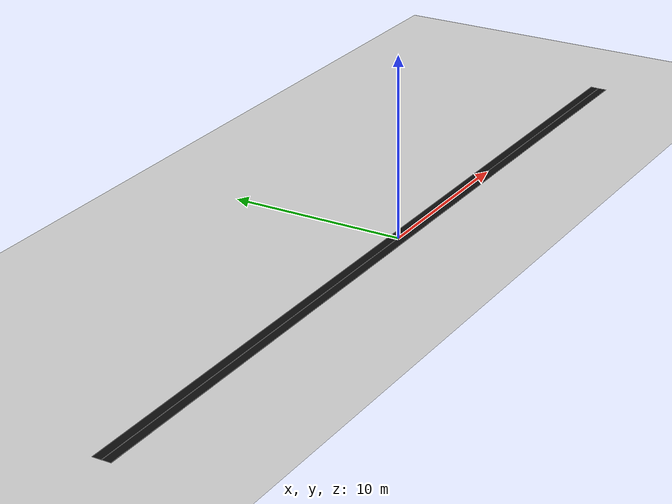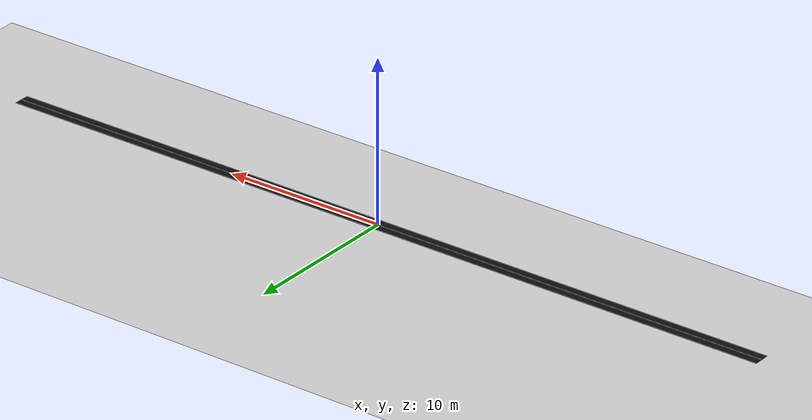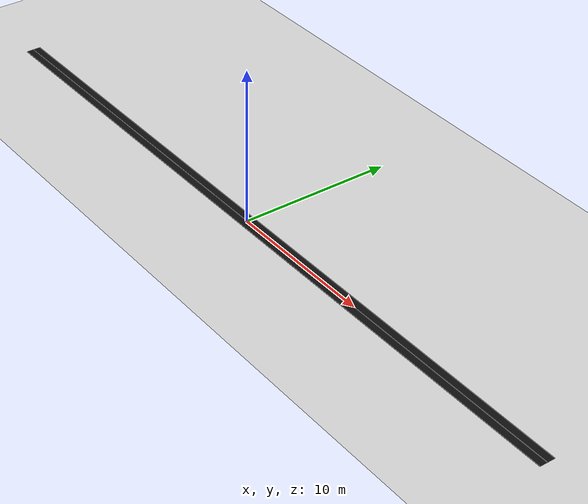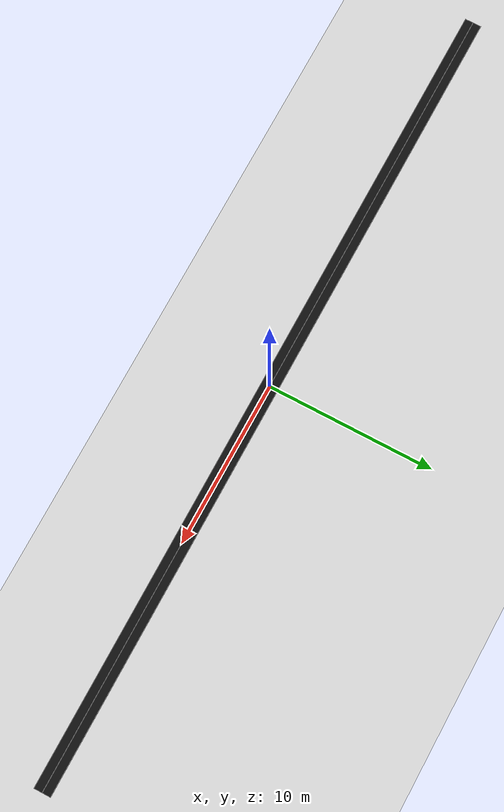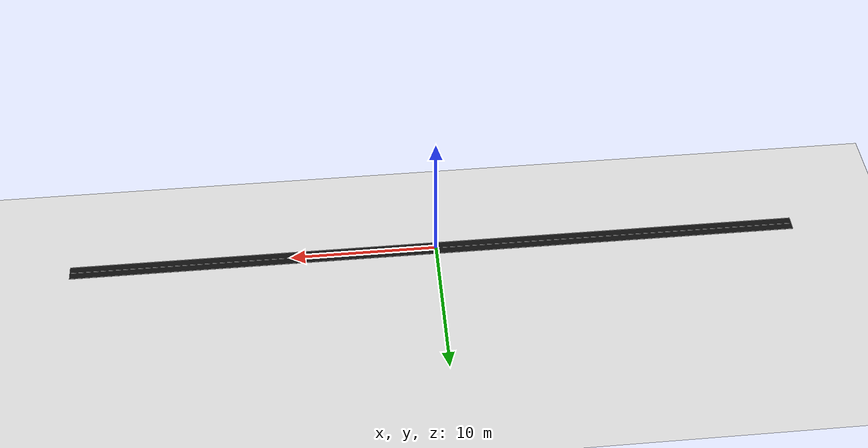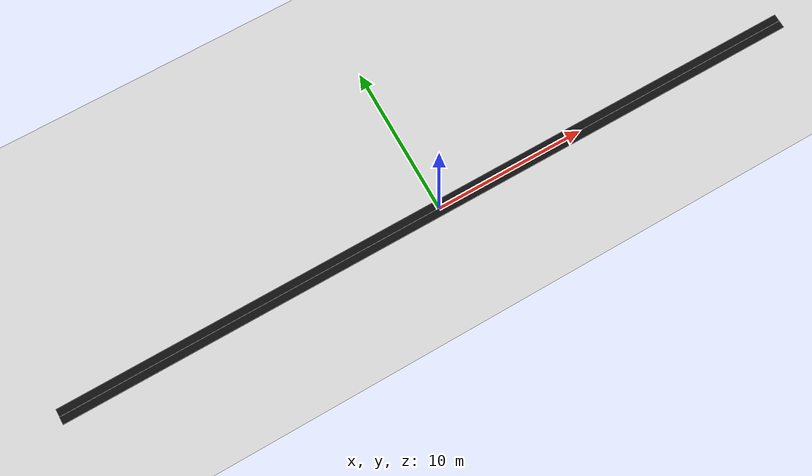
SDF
<?xml version="1.0"?>
<sdf version="1.8">
  <world name="my_world">
    <plugin
      filename="gz-sim-physics-system"
      name="gz::sim::systems::Physics">
    </plugin>
    <plugin
      filename="gz-sim-sensors-system"
      name="gz::sim::systems::Sensors">
      <render_engine>ogre2</render_engine>
    </plugin>
    <plugin
      filename="gz-sim-scene-broadcaster-system"
      name="gz::sim::systems::SceneBroadcaster">
    </plugin>
    <plugin
      filename="gz-sim-user-commands-system"
      name="gz::sim::systems::UserCommands">
    </plugin>

    <plugin filename="gz-sim-imu-system"
        name="gz::sim::systems::Imu">
    </plugin>

    <light name="sun2" type="directional">
      <cast_shadows>true</cast_shadows>
      <pose>0 0 10 0 0 0</pose>
      <diffuse>0.8 0.8 0.8 1</diffuse>
      <specular>0.2 0.2 0.2 1</specular>
      <attenuation>
        <range>1000</range>
        <constant>0.9</constant>
        <linear>0.01</linear>
        <quadratic>0.001</quadratic>
      </attenuation>
      <direction>-0.5 0.1 -0.9</direction>
    </light>

    <model name="ground_plane">
      <static>true</static>
      <link name="link">
        <collision name="collision">
          <geometry>
            <plane>
              <normal>0 0 1</normal>
              <size>100 100</size>
            </plane>
          </geometry>
          <surface>
            <contact>
              <collide_bitmask>0xffff</collide_bitmask>
            </contact>
            <laser_retro>100.0</laser_retro>
          </surface>
        </collision>
        <visual name="visual">
          <geometry>
            <plane>
              <normal>0 0 1</normal>
              <size>100 100</size>
            </plane>
          </geometry>
          <material>
            <ambient>0.8 0.8 0.8 1</ambient>
            <diffuse>0.8 0.8 0.8 1</diffuse>
            <specular>0.8 0.8 0.8 1</specular>
          </material>
        </visual>
      </link>
    </model>

    <include>
      <name>warehouse</name>
      <pose>0 0 0 0 0 0</pose>
      <uri>model://saye_description/worlds/warehouse/straight_road.sdf</uri>
    </include>

  </world>
</sdf>

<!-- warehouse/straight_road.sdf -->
<sdf version="1.9">

  <model name="straight_road">
    <static>true</static>

    <link name="road_link">

      <!-- Road collision -->
      <collision name="road_collision">
        <geometry>
          <box>
            <size>50 1 0.01</size>
          </box>
        </geometry>
      </collision>

      <!-- Black road surface -->
      <visual name="road_surface">
        <geometry>
          <box>
            <size>50 1 0.01</size>
          </box>
        </geometry>

        <material>
          <ambient>0.05 0.05 0.05 1</ambient>
          <diffuse>0.05 0.05 0.05 1</diffuse>
        </material>
      </visual>

      <!-- White center marking -->
      <visual name="center_line">
        <pose>0 0 0.01 0 0 0</pose>

        <geometry>
          <box>
            <size>50 0.02 0.01</size>
          </box>
        </geometry>

        <material>
          <ambient>1 1 1 1</ambient>
          <diffuse>1 1 1 1</diffuse>
        </material>

      </visual>

      <!-- White side marking -->
      <visual name="left_line">
        <pose>0 0.5 0.01 0 0 0</pose>

        <geometry>
          <box>
            <size>50 0.02 0.01</size>
          </box>
        </geometry>

        <material>
          <ambient>1 1 1 1</ambient>
          <diffuse>1 1 1 1</diffuse>
        </material>

      </visual>

      <!-- White side marking -->
      <visual name="right_line">
        <pose>0 -0.5 0.01 0 0 0</pose>

        <geometry>
          <box>
            <size>50 0.02 0.01</size>
          </box>
        </geometry>

        <material>
          <ambient>1 1 1 1</ambient>
          <diffuse>1 1 1 1</diffuse>
        </material>

      </visual>

    </link>

  </model>

</sdf>
